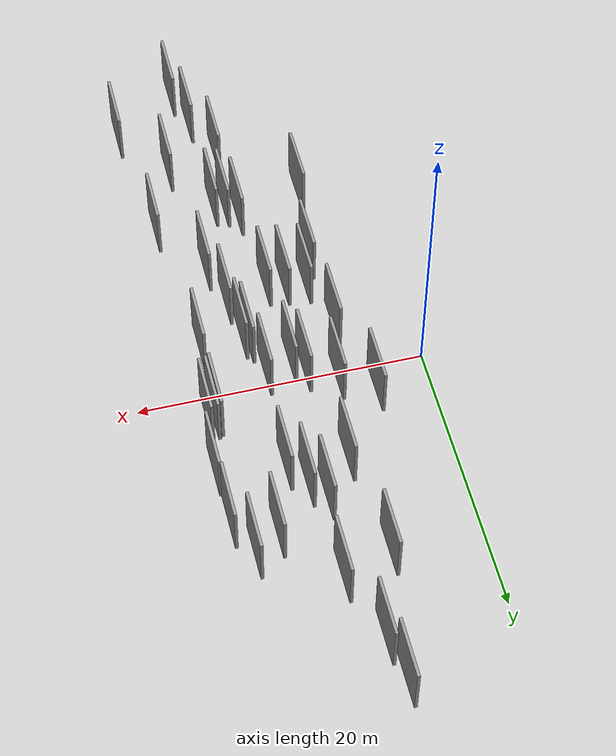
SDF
<sdf version="1.6">
 <world name="default">
  <scene>
   <sky><clouds><speed>12</speed></clouds></sky>
   <ambient>0.4 0.4 0.4 1</ambient>
   <background>0.7 0.7 0.7 1</background>
   <shadows>1</shadows>
  </scene>
  <gravity>0 0 -9.8066</gravity>
  <magnetic_field>6e-06 2.3e-05 -4.2e-05</magnetic_field>
  <physics default="0" name="default_physics" type="ode">
   <ode>
    <solver>
     <type>quick</type>
     <iters>10</iters>
     <sor>1.0</sor>
     <use_dynamic_moi_rescaling>0</use_dynamic_moi_rescaling>
    </solver>
    <constraints>
     <cfm>0</cfm>
     <erp>0.2</erp>
     <contact_max_correcting_vel>100</contact_max_correcting_vel>
     <contact_surface_layer>0.001</contact_surface_layer>
    </constraints>
   </ode>
   <max_step_size>0.004</max_step_size>
   <real_time_factor>1</real_time_factor>
   <real_time_update_rate>250</real_time_update_rate>
  </physics>
  <light name="sun" type="directional">
   <pose>0 0 10 0 0 0</pose>
   <diffuse>0.8 0.8 0.8 1</diffuse>
   <specular>0.2 0.2 0.2 1</specular>
   <attenuation>
    <range>1000</range>
    <constant>0.9</constant>
    <linear>0.01</linear>
    <quadratic>0.001</quadratic>
   </attenuation>
   <direction>-0.5 0.1 -0.9</direction>
  </light>
  <model name="grey_wall_1">
   <static>1</static>
   <pose>15.0076 13.9234 2.5 0.000000 0.000000 1.570796</pose>
   <link name="link">
    <pose>0 0 2.00 0 0 0</pose>
    <collision name="collision"><geometry><box><size>4.00 0.2 4.00</size></box></geometry></collision>
    <visual name="visual">
     <cast_shadows>0</cast_shadows>
     <geometry><box><size>4.00 0.2 4.00</size></box></geometry>
     <material>
      <script>
       <uri>model://grey_wall/materials/scripts</uri>
       <uri>model://grey_wall/materials/textures</uri>
       <name>vrc/grey_wall</name>
      </script>
     </material>
    </visual>
   </link>
  </model>
  <model name="grey_wall_2">
   <static>1</static>
   <pose>8.5708 0.7904 2.5 0.000000 0.000000 1.570796</pose>
   <link name="link">
    <pose>0 0 2.00 0 0 0</pose>
    <collision name="collision"><geometry><box><size>4.00 0.2 4.00</size></box></geometry></collision>
    <visual name="visual">
     <cast_shadows>0</cast_shadows>
     <geometry><box><size>4.00 0.2 4.00</size></box></geometry>
     <material>
      <script>
       <uri>model://grey_wall/materials/scripts</uri>
       <uri>model://grey_wall/materials/textures</uri>
       <name>vrc/grey_wall</name>
      </script>
     </material>
    </visual>
   </link>
  </model>
  <model name="grey_wall_3">
   <static>1</static>
   <pose>11.1726 0.4617 2.5 0.000000 0.000000 1.570796</pose>
   <link name="link">
    <pose>0 0 2.00 0 0 0</pose>
    <collision name="collision"><geometry><box><size>4.00 0.2 4.00</size></box></geometry></collision>
    <visual name="visual">
     <cast_shadows>0</cast_shadows>
     <geometry><box><size>4.00 0.2 4.00</size></box></geometry>
     <material>
      <script>
       <uri>model://grey_wall/materials/scripts</uri>
       <uri>model://grey_wall/materials/textures</uri>
       <name>vrc/grey_wall</name>
      </script>
     </material>
    </visual>
   </link>
  </model>
  <model name="grey_wall_4">
   <static>1</static>
   <pose>13.2742 12.8010 2.5 0.000000 0.000000 1.570796</pose>
   <link name="link">
    <pose>0 0 2.00 0 0 0</pose>
    <collision name="collision"><geometry><box><size>4.00 0.2 4.00</size></box></geometry></collision>
    <visual name="visual">
     <cast_shadows>0</cast_shadows>
     <geometry><box><size>4.00 0.2 4.00</size></box></geometry>
     <material>
      <script>
       <uri>model://grey_wall/materials/scripts</uri>
       <uri>model://grey_wall/materials/textures</uri>
       <name>vrc/grey_wall</name>
      </script>
     </material>
    </visual>
   </link>
  </model>
  <model name="grey_wall_5">
   <static>1</static>
   <pose>5.7178 -2.5260 2.5 0.000000 0.000000 1.570796</pose>
   <link name="link">
    <pose>0 0 2.00 0 0 0</pose>
    <collision name="collision"><geometry><box><size>4.00 0.2 4.00</size></box></geometry></collision>
    <visual name="visual">
     <cast_shadows>0</cast_shadows>
     <geometry><box><size>4.00 0.2 4.00</size></box></geometry>
     <material>
      <script>
       <uri>model://grey_wall/materials/scripts</uri>
       <uri>model://grey_wall/materials/textures</uri>
       <name>vrc/grey_wall</name>
      </script>
     </material>
    </visual>
   </link>
  </model>
  <model name="grey_wall_6">
   <static>1</static>
   <pose>10.2606 -19.6512 2.5 0.000000 0.000000 1.570796</pose>
   <link name="link">
    <pose>0 0 2.00 0 0 0</pose>
    <collision name="collision"><geometry><box><size>4.00 0.2 4.00</size></box></geometry></collision>
    <visual name="visual">
     <cast_shadows>0</cast_shadows>
     <geometry><box><size>4.00 0.2 4.00</size></box></geometry>
     <material>
      <script>
       <uri>model://grey_wall/materials/scripts</uri>
       <uri>model://grey_wall/materials/textures</uri>
       <name>vrc/grey_wall</name>
      </script>
     </material>
    </visual>
   </link>
  </model>
  <model name="grey_wall_7">
   <static>1</static>
   <pose>13.9472 -18.7358 2.5 0.000000 0.000000 1.570796</pose>
   <link name="link">
    <pose>0 0 2.00 0 0 0</pose>
    <collision name="collision"><geometry><box><size>4.00 0.2 4.00</size></box></geometry></collision>
    <visual name="visual">
     <cast_shadows>0</cast_shadows>
     <geometry><box><size>4.00 0.2 4.00</size></box></geometry>
     <material>
      <script>
       <uri>model://grey_wall/materials/scripts</uri>
       <uri>model://grey_wall/materials/textures</uri>
       <name>vrc/grey_wall</name>
      </script>
     </material>
    </visual>
   </link>
  </model>
  <model name="grey_wall_8">
   <static>1</static>
   <pose>9.9331 -13.4862 2.5 0.000000 0.000000 1.570796</pose>
   <link name="link">
    <pose>0 0 2.00 0 0 0</pose>
    <collision name="collision"><geometry><box><size>4.00 0.2 4.00</size></box></geometry></collision>
    <visual name="visual">
     <cast_shadows>0</cast_shadows>
     <geometry><box><size>4.00 0.2 4.00</size></box></geometry>
     <material>
      <script>
       <uri>model://grey_wall/materials/scripts</uri>
       <uri>model://grey_wall/materials/textures</uri>
       <name>vrc/grey_wall</name>
      </script>
     </material>
    </visual>
   </link>
  </model>
  <model name="grey_wall_9">
   <static>1</static>
   <pose>11.7046 -2.4017 2.5 0.000000 0.000000 1.570796</pose>
   <link name="link">
    <pose>0 0 2.00 0 0 0</pose>
    <collision name="collision"><geometry><box><size>4.00 0.2 4.00</size></box></geometry></collision>
    <visual name="visual">
     <cast_shadows>0</cast_shadows>
     <geometry><box><size>4.00 0.2 4.00</size></box></geometry>
     <material>
      <script>
       <uri>model://grey_wall/materials/scripts</uri>
       <uri>model://grey_wall/materials/textures</uri>
       <name>vrc/grey_wall</name>
      </script>
     </material>
    </visual>
   </link>
  </model>
  <model name="grey_wall_10">
   <static>1</static>
   <pose>6.5764 1.9264 2.5 0.000000 0.000000 1.570796</pose>
   <link name="link">
    <pose>0 0 2.00 0 0 0</pose>
    <collision name="collision"><geometry><box><size>4.00 0.2 4.00</size></box></geometry></collision>
    <visual name="visual">
     <cast_shadows>0</cast_shadows>
     <geometry><box><size>4.00 0.2 4.00</size></box></geometry>
     <material>
      <script>
       <uri>model://grey_wall/materials/scripts</uri>
       <uri>model://grey_wall/materials/textures</uri>
       <name>vrc/grey_wall</name>
      </script>
     </material>
    </visual>
   </link>
  </model>
  <model name="grey_wall_11">
   <static>1</static>
   <pose>4.2827 3.4458 2.5 0.000000 0.000000 1.570796</pose>
   <link name="link">
    <pose>0 0 2.00 0 0 0</pose>
    <collision name="collision"><geometry><box><size>4.00 0.2 4.00</size></box></geometry></collision>
    <visual name="visual">
     <cast_shadows>0</cast_shadows>
     <geometry><box><size>4.00 0.2 4.00</size></box></geometry>
     <material>
      <script>
       <uri>model://grey_wall/materials/scripts</uri>
       <uri>model://grey_wall/materials/textures</uri>
       <name>vrc/grey_wall</name>
      </script>
     </material>
    </visual>
   </link>
  </model>
  <model name="grey_wall_12">
   <static>1</static>
   <pose>10.5418 9.6106 2.5 0.000000 0.000000 1.570796</pose>
   <link name="link">
    <pose>0 0 2.00 0 0 0</pose>
    <collision name="collision"><geometry><box><size>4.00 0.2 4.00</size></box></geometry></collision>
    <visual name="visual">
     <cast_shadows>0</cast_shadows>
     <geometry><box><size>4.00 0.2 4.00</size></box></geometry>
     <material>
      <script>
       <uri>model://grey_wall/materials/scripts</uri>
       <uri>model://grey_wall/materials/textures</uri>
       <name>vrc/grey_wall</name>
      </script>
     </material>
    </visual>
   </link>
  </model>
  <model name="grey_wall_13">
   <static>1</static>
   <pose>15.0496 2.9080 2.5 0.000000 0.000000 1.570796</pose>
   <link name="link">
    <pose>0 0 2.00 0 0 0</pose>
    <collision name="collision"><geometry><box><size>4.00 0.2 4.00</size></box></geometry></collision>
    <visual name="visual">
     <cast_shadows>0</cast_shadows>
     <geometry><box><size>4.00 0.2 4.00</size></box></geometry>
     <material>
      <script>
       <uri>model://grey_wall/materials/scripts</uri>
       <uri>model://grey_wall/materials/textures</uri>
       <name>vrc/grey_wall</name>
      </script>
     </material>
    </visual>
   </link>
  </model>
  <model name="grey_wall_14">
   <static>1</static>
   <pose>15.7496 3.1780 2.5 0.000000 0.000000 1.570796</pose>
   <link name="link">
    <pose>0 0 2.00 0 0 0</pose>
    <collision name="collision"><geometry><box><size>4.00 0.2 4.00</size></box></geometry></collision>
    <visual name="visual">
     <cast_shadows>0</cast_shadows>
     <geometry><box><size>4.00 0.2 4.00</size></box></geometry>
     <material>
      <script>
       <uri>model://grey_wall/materials/scripts</uri>
       <uri>model://grey_wall/materials/textures</uri>
       <name>vrc/grey_wall</name>
      </script>
     </material>
    </visual>
   </link>
  </model>
  <model name="grey_wall_15">
   <static>1</static>
   <pose>15.0167 -2.6453 2.5 0.000000 0.000000 1.570796</pose>
   <link name="link">
    <pose>0 0 2.00 0 0 0</pose>
    <collision name="collision"><geometry><box><size>4.00 0.2 4.00</size></box></geometry></collision>
    <visual name="visual">
     <cast_shadows>0</cast_shadows>
     <geometry><box><size>4.00 0.2 4.00</size></box></geometry>
     <material>
      <script>
       <uri>model://grey_wall/materials/scripts</uri>
       <uri>model://grey_wall/materials/textures</uri>
       <name>vrc/grey_wall</name>
      </script>
     </material>
    </visual>
   </link>
  </model>
  <model name="grey_wall_16">
   <static>1</static>
   <pose>5.2486 -14.7160 2.5 0.000000 0.000000 1.570796</pose>
   <link name="link">
    <pose>0 0 2.00 0 0 0</pose>
    <collision name="collision"><geometry><box><size>4.00 0.2 4.00</size></box></geometry></collision>
    <visual name="visual">
     <cast_shadows>0</cast_shadows>
     <geometry><box><size>4.00 0.2 4.00</size></box></geometry>
     <material>
      <script>
       <uri>model://grey_wall/materials/scripts</uri>
       <uri>model://grey_wall/materials/textures</uri>
       <name>vrc/grey_wall</name>
      </script>
     </material>
    </visual>
   </link>
  </model>
  <model name="grey_wall_17">
   <static>1</static>
   <pose>11.5002 -14.7473 2.5 0.000000 0.000000 1.570796</pose>
   <link name="link">
    <pose>0 0 2.00 0 0 0</pose>
    <collision name="collision"><geometry><box><size>4.00 0.2 4.00</size></box></geometry></collision>
    <visual name="visual">
     <cast_shadows>0</cast_shadows>
     <geometry><box><size>4.00 0.2 4.00</size></box></geometry>
     <material>
      <script>
       <uri>model://grey_wall/materials/scripts</uri>
       <uri>model://grey_wall/materials/textures</uri>
       <name>vrc/grey_wall</name>
      </script>
     </material>
    </visual>
   </link>
  </model>
  <model name="grey_wall_18">
   <static>1</static>
   <pose>16.0693 11.3909 2.5 0.000000 0.000000 1.570796</pose>
   <link name="link">
    <pose>0 0 2.00 0 0 0</pose>
    <collision name="collision"><geometry><box><size>4.00 0.2 4.00</size></box></geometry></collision>
    <visual name="visual">
     <cast_shadows>0</cast_shadows>
     <geometry><box><size>4.00 0.2 4.00</size></box></geometry>
     <material>
      <script>
       <uri>model://grey_wall/materials/scripts</uri>
       <uri>model://grey_wall/materials/textures</uri>
       <name>vrc/grey_wall</name>
      </script>
     </material>
    </visual>
   </link>
  </model>
  <model name="grey_wall_19">
   <static>1</static>
   <pose>12.4589 -5.9564 2.5 0.000000 0.000000 1.570796</pose>
   <link name="link">
    <pose>0 0 2.00 0 0 0</pose>
    <collision name="collision"><geometry><box><size>4.00 0.2 4.00</size></box></geometry></collision>
    <visual name="visual">
     <cast_shadows>0</cast_shadows>
     <geometry><box><size>4.00 0.2 4.00</size></box></geometry>
     <material>
      <script>
       <uri>model://grey_wall/materials/scripts</uri>
       <uri>model://grey_wall/materials/textures</uri>
       <name>vrc/grey_wall</name>
      </script>
     </material>
    </visual>
   </link>
  </model>
  <model name="grey_wall_20">
   <static>1</static>
   <pose>12.0651 -2.8417 2.5 0.000000 0.000000 1.570796</pose>
   <link name="link">
    <pose>0 0 2.00 0 0 0</pose>
    <collision name="collision"><geometry><box><size>4.00 0.2 4.00</size></box></geometry></collision>
    <visual name="visual">
     <cast_shadows>0</cast_shadows>
     <geometry><box><size>4.00 0.2 4.00</size></box></geometry>
     <material>
      <script>
       <uri>model://grey_wall/materials/scripts</uri>
       <uri>model://grey_wall/materials/textures</uri>
       <name>vrc/grey_wall</name>
      </script>
     </material>
    </visual>
   </link>
  </model>
  <model name="grey_wall_21">
   <static>1</static>
   <pose>16.8596 -22.7576 2.5 0.000000 0.000000 1.570796</pose>
   <link name="link">
    <pose>0 0 2.00 0 0 0</pose>
    <collision name="collision"><geometry><box><size>4.00 0.2 4.00</size></box></geometry></collision>
    <visual name="visual">
     <cast_shadows>0</cast_shadows>
     <geometry><box><size>4.00 0.2 4.00</size></box></geometry>
     <material>
      <script>
       <uri>model://grey_wall/materials/scripts</uri>
       <uri>model://grey_wall/materials/textures</uri>
       <name>vrc/grey_wall</name>
      </script>
     </material>
    </visual>
   </link>
  </model>
  <model name="grey_wall_22">
   <static>1</static>
   <pose>9.5572 10.8462 2.5 0.000000 0.000000 1.570796</pose>
   <link name="link">
    <pose>0 0 2.00 0 0 0</pose>
    <collision name="collision"><geometry><box><size>4.00 0.2 4.00</size></box></geometry></collision>
    <visual name="visual">
     <cast_shadows>0</cast_shadows>
     <geometry><box><size>4.00 0.2 4.00</size></box></geometry>
     <material>
      <script>
       <uri>model://grey_wall/materials/scripts</uri>
       <uri>model://grey_wall/materials/textures</uri>
       <name>vrc/grey_wall</name>
      </script>
     </material>
    </visual>
   </link>
  </model>
  <model name="grey_wall_23">
   <static>1</static>
   <pose>16.1855 7.3647 2.5 0.000000 0.000000 1.570796</pose>
   <link name="link">
    <pose>0 0 2.00 0 0 0</pose>
    <collision name="collision"><geometry><box><size>4.00 0.2 4.00</size></box></geometry></collision>
    <visual name="visual">
     <cast_shadows>0</cast_shadows>
     <geometry><box><size>4.00 0.2 4.00</size></box></geometry>
     <material>
      <script>
       <uri>model://grey_wall/materials/scripts</uri>
       <uri>model://grey_wall/materials/textures</uri>
       <name>vrc/grey_wall</name>
      </script>
     </material>
    </visual>
   </link>
  </model>
  <model name="grey_wall_24">
   <static>1</static>
   <pose>11.6396 8.0376 2.5 0.000000 0.000000 1.570796</pose>
   <link name="link">
    <pose>0 0 2.00 0 0 0</pose>
    <collision name="collision"><geometry><box><size>4.00 0.2 4.00</size></box></geometry></collision>
    <visual name="visual">
     <cast_shadows>0</cast_shadows>
     <geometry><box><size>4.00 0.2 4.00</size></box></geometry>
     <material>
      <script>
       <uri>model://grey_wall/materials/scripts</uri>
       <uri>model://grey_wall/materials/textures</uri>
       <name>vrc/grey_wall</name>
      </script>
     </material>
    </visual>
   </link>
  </model>
  <model name="grey_wall_25">
   <static>1</static>
   <pose>10.7020 -14.4868 2.5 0.000000 0.000000 1.570796</pose>
   <link name="link">
    <pose>0 0 2.00 0 0 0</pose>
    <collision name="collision"><geometry><box><size>4.00 0.2 4.00</size></box></geometry></collision>
    <visual name="visual">
     <cast_shadows>0</cast_shadows>
     <geometry><box><size>4.00 0.2 4.00</size></box></geometry>
     <material>
      <script>
       <uri>model://grey_wall/materials/scripts</uri>
       <uri>model://grey_wall/materials/textures</uri>
       <name>vrc/grey_wall</name>
      </script>
     </material>
    </visual>
   </link>
  </model>
  <model name="grey_wall_26">
   <static>1</static>
   <pose>10.0569 16.8701 2.5 0.000000 0.000000 1.570796</pose>
   <link name="link">
    <pose>0 0 2.00 0 0 0</pose>
    <collision name="collision"><geometry><box><size>4.00 0.2 4.00</size></box></geometry></collision>
    <visual name="visual">
     <cast_shadows>0</cast_shadows>
     <geometry><box><size>4.00 0.2 4.00</size></box></geometry>
     <material>
      <script>
       <uri>model://grey_wall/materials/scripts</uri>
       <uri>model://grey_wall/materials/textures</uri>
       <name>vrc/grey_wall</name>
      </script>
     </material>
    </visual>
   </link>
  </model>
  <model name="grey_wall_27">
   <static>1</static>
   <pose>12.2892 -25.9407 2.5 0.000000 0.000000 1.570796</pose>
   <link name="link">
    <pose>0 0 2.00 0 0 0</pose>
    <collision name="collision"><geometry><box><size>4.00 0.2 4.00</size></box></geometry></collision>
    <visual name="visual">
     <cast_shadows>0</cast_shadows>
     <geometry><box><size>4.00 0.2 4.00</size></box></geometry>
     <material>
      <script>
       <uri>model://grey_wall/materials/scripts</uri>
       <uri>model://grey_wall/materials/textures</uri>
       <name>vrc/grey_wall</name>
      </script>
     </material>
    </visual>
   </link>
  </model>
  <model name="grey_wall_28">
   <static>1</static>
   <pose>6.0562 -8.4607 2.5 0.000000 0.000000 1.570796</pose>
   <link name="link">
    <pose>0 0 2.00 0 0 0</pose>
    <collision name="collision"><geometry><box><size>4.00 0.2 4.00</size></box></geometry></collision>
    <visual name="visual">
     <cast_shadows>0</cast_shadows>
     <geometry><box><size>4.00 0.2 4.00</size></box></geometry>
     <material>
      <script>
       <uri>model://grey_wall/materials/scripts</uri>
       <uri>model://grey_wall/materials/textures</uri>
       <name>vrc/grey_wall</name>
      </script>
     </material>
    </visual>
   </link>
  </model>
  <model name="grey_wall_29">
   <static>1</static>
   <pose>6.7509 -6.4184 2.5 0.000000 0.000000 1.570796</pose>
   <link name="link">
    <pose>0 0 2.00 0 0 0</pose>
    <collision name="collision"><geometry><box><size>4.00 0.2 4.00</size></box></geometry></collision>
    <visual name="visual">
     <cast_shadows>0</cast_shadows>
     <geometry><box><size>4.00 0.2 4.00</size></box></geometry>
     <material>
      <script>
       <uri>model://grey_wall/materials/scripts</uri>
       <uri>model://grey_wall/materials/textures</uri>
       <name>vrc/grey_wall</name>
      </script>
     </material>
    </visual>
   </link>
  </model>
  <model name="grey_wall_30">
   <static>1</static>
   <pose>15.2959 3.0814 2.5 0.000000 0.000000 1.570796</pose>
   <link name="link">
    <pose>0 0 2.00 0 0 0</pose>
    <collision name="collision"><geometry><box><size>4.00 0.2 4.00</size></box></geometry></collision>
    <visual name="visual">
     <cast_shadows>0</cast_shadows>
     <geometry><box><size>4.00 0.2 4.00</size></box></geometry>
     <material>
      <script>
       <uri>model://grey_wall/materials/scripts</uri>
       <uri>model://grey_wall/materials/textures</uri>
       <name>vrc/grey_wall</name>
      </script>
     </material>
    </visual>
   </link>
  </model>
  <model name="grey_wall_31">
   <static>1</static>
   <pose>7.5487 8.3180 2.5 0.000000 0.000000 1.570796</pose>
   <link name="link">
    <pose>0 0 2.00 0 0 0</pose>
    <collision name="collision"><geometry><box><size>4.00 0.2 4.00</size></box></geometry></collision>
    <visual name="visual">
     <cast_shadows>0</cast_shadows>
     <geometry><box><size>4.00 0.2 4.00</size></box></geometry>
     <material>
      <script>
       <uri>model://grey_wall/materials/scripts</uri>
       <uri>model://grey_wall/materials/textures</uri>
       <name>vrc/grey_wall</name>
      </script>
     </material>
    </visual>
   </link>
  </model>
  <model name="grey_wall_32">
   <static>1</static>
   <pose>11.5457 -23.0181 2.5 0.000000 0.000000 1.570796</pose>
   <link name="link">
    <pose>0 0 2.00 0 0 0</pose>
    <collision name="collision"><geometry><box><size>4.00 0.2 4.00</size></box></geometry></collision>
    <visual name="visual">
     <cast_shadows>0</cast_shadows>
     <geometry><box><size>4.00 0.2 4.00</size></box></geometry>
     <material>
      <script>
       <uri>model://grey_wall/materials/scripts</uri>
       <uri>model://grey_wall/materials/textures</uri>
       <name>vrc/grey_wall</name>
      </script>
     </material>
    </visual>
   </link>
  </model>
  <model name="grey_wall_33">
   <static>1</static>
   <pose>8.1353 24.6373 2.5 0.000000 0.000000 1.570796</pose>
   <link name="link">
    <pose>0 0 2.00 0 0 0</pose>
    <collision name="collision"><geometry><box><size>4.00 0.2 4.00</size></box></geometry></collision>
    <visual name="visual">
     <cast_shadows>0</cast_shadows>
     <geometry><box><size>4.00 0.2 4.00</size></box></geometry>
     <material>
      <script>
       <uri>model://grey_wall/materials/scripts</uri>
       <uri>model://grey_wall/materials/textures</uri>
       <name>vrc/grey_wall</name>
      </script>
     </material>
    </visual>
   </link>
  </model>
  <model name="grey_wall_34">
   <static>1</static>
   <pose>15.9194 -13.3920 2.5 0.000000 0.000000 1.570796</pose>
   <link name="link">
    <pose>0 0 2.00 0 0 0</pose>
    <collision name="collision"><geometry><box><size>4.00 0.2 4.00</size></box></geometry></collision>
    <visual name="visual">
     <cast_shadows>0</cast_shadows>
     <geometry><box><size>4.00 0.2 4.00</size></box></geometry>
     <material>
      <script>
       <uri>model://grey_wall/materials/scripts</uri>
       <uri>model://grey_wall/materials/textures</uri>
       <name>vrc/grey_wall</name>
      </script>
     </material>
    </visual>
   </link>
  </model>
  <model name="grey_wall_35">
   <static>1</static>
   <pose>6.7040 15.6985 2.5 0.000000 0.000000 1.570796</pose>
   <link name="link">
    <pose>0 0 2.00 0 0 0</pose>
    <collision name="collision"><geometry><box><size>4.00 0.2 4.00</size></box></geometry></collision>
    <visual name="visual">
     <cast_shadows>0</cast_shadows>
     <geometry><box><size>4.00 0.2 4.00</size></box></geometry>
     <material>
      <script>
       <uri>model://grey_wall/materials/scripts</uri>
       <uri>model://grey_wall/materials/textures</uri>
       <name>vrc/grey_wall</name>
      </script>
     </material>
    </visual>
   </link>
  </model>
  <model name="grey_wall_36">
   <static>1</static>
   <pose>8.6267 21.6415 2.5 0.000000 0.000000 1.570796</pose>
   <link name="link">
    <pose>0 0 2.00 0 0 0</pose>
    <collision name="collision"><geometry><box><size>4.00 0.2 4.00</size></box></geometry></collision>
    <visual name="visual">
     <cast_shadows>0</cast_shadows>
     <geometry><box><size>4.00 0.2 4.00</size></box></geometry>
     <material>
      <script>
       <uri>model://grey_wall/materials/scripts</uri>
       <uri>model://grey_wall/materials/textures</uri>
       <name>vrc/grey_wall</name>
      </script>
     </material>
    </visual>
   </link>
  </model>
  <model name="grey_wall_37">
   <static>1</static>
   <pose>9.3306 -0.1686 2.5 0.000000 0.000000 1.570796</pose>
   <link name="link">
    <pose>0 0 2.00 0 0 0</pose>
    <collision name="collision"><geometry><box><size>4.00 0.2 4.00</size></box></geometry></collision>
    <visual name="visual">
     <cast_shadows>0</cast_shadows>
     <geometry><box><size>4.00 0.2 4.00</size></box></geometry>
     <material>
      <script>
       <uri>model://grey_wall/materials/scripts</uri>
       <uri>model://grey_wall/materials/textures</uri>
       <name>vrc/grey_wall</name>
      </script>
     </material>
    </visual>
   </link>
  </model>
  <model name="grey_wall_38">
   <static>1</static>
   <pose>8.2215 -6.6243 2.5 0.000000 0.000000 1.570796</pose>
   <link name="link">
    <pose>0 0 2.00 0 0 0</pose>
    <collision name="collision"><geometry><box><size>4.00 0.2 4.00</size></box></geometry></collision>
    <visual name="visual">
     <cast_shadows>0</cast_shadows>
     <geometry><box><size>4.00 0.2 4.00</size></box></geometry>
     <material>
      <script>
       <uri>model://grey_wall/materials/scripts</uri>
       <uri>model://grey_wall/materials/textures</uri>
       <name>vrc/grey_wall</name>
      </script>
     </material>
    </visual>
   </link>
  </model>
  <model name="grey_wall_39">
   <static>1</static>
   <pose>13.2193 -9.1766 2.5 0.000000 0.000000 1.570796</pose>
   <link name="link">
    <pose>0 0 2.00 0 0 0</pose>
    <collision name="collision"><geometry><box><size>4.00 0.2 4.00</size></box></geometry></collision>
    <visual name="visual">
     <cast_shadows>0</cast_shadows>
     <geometry><box><size>4.00 0.2 4.00</size></box></geometry>
     <material>
      <script>
       <uri>model://grey_wall/materials/scripts</uri>
       <uri>model://grey_wall/materials/textures</uri>
       <name>vrc/grey_wall</name>
      </script>
     </material>
    </visual>
   </link>
  </model>
  <model name="grey_wall_40">
   <static>1</static>
   <pose>9.5002 -6.8485 2.5 0.000000 0.000000 1.570796</pose>
   <link name="link">
    <pose>0 0 2.00 0 0 0</pose>
    <collision name="collision"><geometry><box><size>4.00 0.2 4.00</size></box></geometry></collision>
    <visual name="visual">
     <cast_shadows>0</cast_shadows>
     <geometry><box><size>4.00 0.2 4.00</size></box></geometry>
     <material>
      <script>
       <uri>model://grey_wall/materials/scripts</uri>
       <uri>model://grey_wall/materials/textures</uri>
       <name>vrc/grey_wall</name>
      </script>
     </material>
    </visual>
   </link>
  </model>
 </world>
</sdf>
